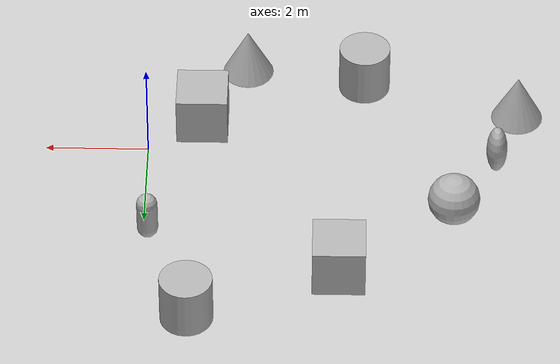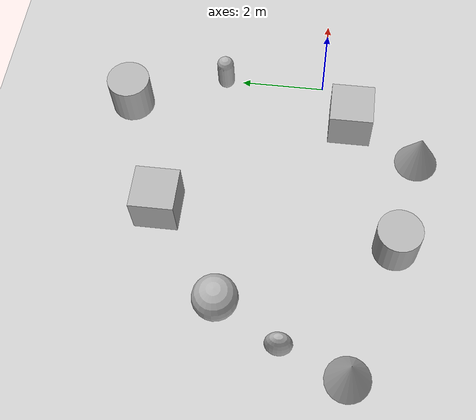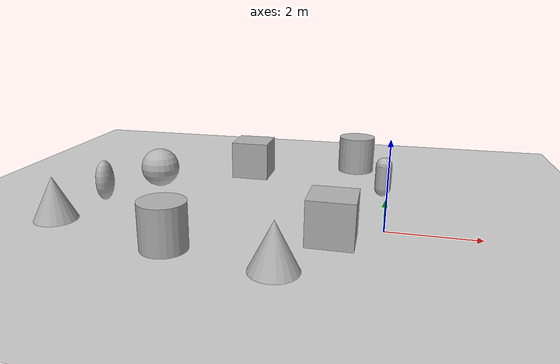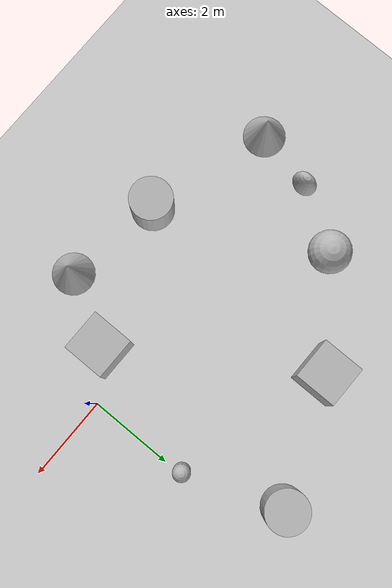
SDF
<sdf version='1.10'>
  <world name='empty'>
    <physics name='1ms' type='ignored'>
      <max_step_size>0.001</max_step_size>
      <real_time_factor>1</real_time_factor>
      <real_time_update_rate>1000</real_time_update_rate>
    </physics>
    <plugin name='gz::sim::systems::Physics' filename='gz-sim-physics-system'/>
    <plugin name='gz::sim::systems::UserCommands' filename='gz-sim-user-commands-system'/>
    <plugin name='gz::sim::systems::SceneBroadcaster' filename='gz-sim-scene-broadcaster-system'/>
    <plugin name='gz::sim::systems::Contact' filename='gz-sim-contact-system'/>
    <gravity>0 0 -9.8000000000000007</gravity>
    <magnetic_field>5.5644999999999998e-06 2.2875799999999999e-05 -4.2388400000000002e-05</magnetic_field>
    <atmosphere type='adiabatic'/>
    <scene>
      <ambient>0.400000006 0.400000006 0.400000006 1</ambient>
      <background>0.699999988 0.699999988 0.699999988 1</background>
      <shadows>true</shadows>
    </scene>
    <model name='ground_plane'>
      <static>true</static>
      <link name='link'>
        <collision name='collision'>
          <geometry>
            <plane>
              <normal>0 0 1</normal>
              <size>100 100</size>
            </plane>
          </geometry>
          <surface>
            <friction>
              <ode/>
            </friction>
            <bounce/>
            <contact/>
          </surface>
        </collision>
        <visual name='visual'>
          <geometry>
            <plane>
              <normal>0 0 1</normal>
              <size>100 100</size>
            </plane>
          </geometry>
          <material>
            <ambient>0.800000012 0.800000012 0.800000012 1</ambient>
            <diffuse>0.800000012 0.800000012 0.800000012 1</diffuse>
            <specular>0.800000012 0.800000012 0.800000012 1</specular>
          </material>
        </visual>
        <pose>0 0 0 0 0 0</pose>
        <inertial>
          <pose>0 0 0 0 0 0</pose>
          <mass>1</mass>
          <inertia>
            <ixx>1</ixx>
            <ixy>0</ixy>
            <ixz>0</ixz>
            <iyy>1</iyy>
            <iyz>0</iyz>
            <izz>1</izz>
          </inertia>
        </inertial>
        <enable_wind>false</enable_wind>
      </link>
      <pose>0 0 0 0 0 0</pose>
      <self_collide>false</self_collide>
    </model>
    <model name='box'>
      <pose>-3.744043831480754 3.4582015222886859 0.5 0 0 0</pose>
      <link name='box_link'>
        <inertial>
          <inertia>
            <ixx>0.16666</ixx>
            <ixy>0</ixy>
            <ixz>0</ixz>
            <iyy>0.16666</iyy>
            <iyz>0</iyz>
            <izz>0.16666</izz>
          </inertia>
          <mass>1</mass>
          <pose>0 0 0 0 0 0</pose>
        </inertial>
        <collision name='box_collision'>
          <geometry>
            <box>
              <size>1 1 1</size>
            </box>
          </geometry>
          <surface>
            <friction>
              <ode/>
            </friction>
            <bounce/>
            <contact/>
          </surface>
        </collision>
        <visual name='box_visual'>
          <geometry>
            <box>
              <size>1 1 1</size>
            </box>
          </geometry>
          <material>
            <ambient>0.300000012 0.300000012 0.300000012 1</ambient>
            <diffuse>0.699999988 0.699999988 0.699999988 1</diffuse>
            <specular>1 1 1 1</specular>
          </material>
        </visual>
        <pose>0 0 0 0 0 0</pose>
        <enable_wind>false</enable_wind>
      </link>
      <static>false</static>
      <self_collide>false</self_collide>
    </model>
    <model name='sphere'>
      <pose>-5.9258353839052669 1.8318219477419329 0.5 0 0 0</pose>
      <link name='sphere_link'>
        <inertial>
          <inertia>
            <ixx>0.10000000000000001</ixx>
            <ixy>0</ixy>
            <ixz>0</ixz>
            <iyy>0.10000000000000001</iyy>
            <iyz>0</iyz>
            <izz>0.10000000000000001</izz>
          </inertia>
          <mass>1</mass>
          <pose>0 0 0 0 0 0</pose>
        </inertial>
        <collision name='sphere_collision'>
          <geometry>
            <sphere>
              <radius>0.5</radius>
            </sphere>
          </geometry>
          <surface>
            <friction>
              <ode/>
            </friction>
            <bounce/>
            <contact/>
          </surface>
        </collision>
        <visual name='sphere_visual'>
          <geometry>
            <sphere>
              <radius>0.5</radius>
            </sphere>
          </geometry>
          <material>
            <ambient>0.300000012 0.300000012 0.300000012 1</ambient>
            <diffuse>0.699999988 0.699999988 0.699999988 1</diffuse>
            <specular>1 1 1 1</specular>
          </material>
        </visual>
        <pose>0 0 0 0 0 0</pose>
        <enable_wind>false</enable_wind>
      </link>
      <static>false</static>
      <self_collide>false</self_collide>
    </model>
    <model name='cone'>
      <pose>-1.8923168319320212 -2.348336193892115 0.5 0 0 0</pose>
      <link name='cone_link'>
        <inertial>
          <inertia>
            <ixx>0.074999999999999997</ixx>
            <ixy>0</ixy>
            <ixz>0</ixz>
            <iyy>0.074999999999999997</iyy>
            <iyz>0</iyz>
            <izz>0.074999999999999997</izz>
          </inertia>
          <mass>1</mass>
          <pose>0 0 0 0 0 0</pose>
        </inertial>
        <collision name='cone_collision'>
          <geometry>
            <cone>
              <radius>0.5</radius>
              <length>1</length>
            </cone>
          </geometry>
          <surface>
            <friction>
              <ode/>
            </friction>
            <bounce/>
            <contact/>
          </surface>
        </collision>
        <visual name='cone_visual'>
          <geometry>
            <cone>
              <radius>0.5</radius>
              <length>1</length>
            </cone>
          </geometry>
          <material>
            <ambient>0.300000012 0.300000012 0.300000012 1</ambient>
            <diffuse>0.699999988 0.699999988 0.699999988 1</diffuse>
            <specular>1 1 1 1</specular>
          </material>
        </visual>
        <pose>0 0 0 0 0 0</pose>
        <enable_wind>false</enable_wind>
      </link>
      <static>false</static>
      <self_collide>false</self_collide>
    </model>
    <model name='capsule'>
      <pose>-0.096292344962272125 2.3980461874132435 0.5 0 0 0</pose>
      <link name='capsule_link'>
        <inertial>
          <inertia>
            <ixx>0.074153999999999998</ixx>
            <ixy>0</ixy>
            <ixz>0</ixz>
            <iyy>0.074153999999999998</iyy>
            <iyz>0</iyz>
            <izz>0.018769000000000001</izz>
          </inertia>
          <mass>1</mass>
          <pose>0 0 0 0 0 0</pose>
        </inertial>
        <collision name='capsule_collision'>
          <geometry>
            <capsule>
              <radius>0.20000000000000001</radius>
              <length>0.59999999999999998</length>
            </capsule>
          </geometry>
          <surface>
            <friction>
              <ode/>
            </friction>
            <bounce/>
            <contact/>
          </surface>
        </collision>
        <visual name='capsule_visual'>
          <geometry>
            <capsule>
              <radius>0.20000000000000001</radius>
              <length>0.59999999999999998</length>
            </capsule>
          </geometry>
          <material>
            <ambient>0.300000012 0.300000012 0.300000012 1</ambient>
            <diffuse>0.699999988 0.699999988 0.699999988 1</diffuse>
            <specular>1 1 1 1</specular>
          </material>
        </visual>
        <pose>0 0 0 0 0 0</pose>
        <enable_wind>false</enable_wind>
      </link>
      <static>false</static>
      <self_collide>false</self_collide>
    </model>
    <model name='cylinder'>
      <pose>-4.2092866817240466 -1.9238245062835633 0.5 0 0 0</pose>
      <link name='cylinder_link'>
        <inertial>
          <inertia>
            <ixx>0.14580000000000001</ixx>
            <ixy>0</ixy>
            <ixz>0</ixz>
            <iyy>0.14580000000000001</iyy>
            <iyz>0</iyz>
            <izz>0.125</izz>
          </inertia>
          <mass>1</mass>
          <pose>0 0 0 0 0 0</pose>
        </inertial>
        <collision name='cylinder_collision'>
          <geometry>
            <cylinder>
              <radius>0.5</radius>
              <length>1</length>
            </cylinder>
          </geometry>
          <surface>
            <friction>
              <ode/>
            </friction>
            <bounce/>
            <contact/>
          </surface>
        </collision>
        <visual name='cylinder_visual'>
          <geometry>
            <cylinder>
              <radius>0.5</radius>
              <length>1</length>
            </cylinder>
          </geometry>
          <material>
            <ambient>0.300000012 0.300000012 0.300000012 1</ambient>
            <diffuse>0.699999988 0.699999988 0.699999988 1</diffuse>
            <specular>1 1 1 1</specular>
          </material>
        </visual>
        <pose>0 0 0 0 0 0</pose>
        <enable_wind>false</enable_wind>
      </link>
      <static>false</static>
      <self_collide>false</self_collide>
    </model>
    <model name='ellipsoid'>
      <pose>-6.777653600724852 0.40923342723211703 0.5 0 0 0</pose>
      <link name='ellipsoid_link'>
        <inertial>
          <inertia>
            <ixx>0.068000000000000005</ixx>
            <ixy>0</ixy>
            <ixz>0</ixz>
            <iyy>0.058000000000000003</iyy>
            <iyz>0</iyz>
            <izz>0.025999999999999999</izz>
          </inertia>
          <mass>1</mass>
          <pose>0 0 0 0 0 0</pose>
        </inertial>
        <collision name='ellipsoid_collision'>
          <geometry>
            <ellipsoid>
              <radii>0.20000000000000001 0.29999999999999999 0.5</radii>
            </ellipsoid>
          </geometry>
          <surface>
            <friction>
              <ode/>
            </friction>
            <bounce/>
            <contact/>
          </surface>
        </collision>
        <visual name='ellipsoid_visual'>
          <geometry>
            <ellipsoid>
              <radii>0.20000000000000001 0.29999999999999999 0.5</radii>
            </ellipsoid>
          </geometry>
          <material>
            <ambient>0.300000012 0.300000012 0.300000012 1</ambient>
            <diffuse>0.699999988 0.699999988 0.699999988 1</diffuse>
            <specular>1 1 1 1</specular>
          </material>
        </visual>
        <pose>0 0 0 0 0 0</pose>
        <enable_wind>false</enable_wind>
      </link>
      <static>false</static>
      <self_collide>false</self_collide>
    </model>
    <model name='box_0'>
      <pose>-1.0381464794199715 -0.72390850219854963 0.5 0 0 0</pose>
      <link name='box_link'>
        <inertial>
          <inertia>
            <ixx>0.16666</ixx>
            <ixy>0</ixy>
            <ixz>0</ixz>
            <iyy>0.16666</iyy>
            <iyz>0</iyz>
            <izz>0.16666</izz>
          </inertia>
          <mass>1</mass>
          <pose>0 0 0 0 0 0</pose>
        </inertial>
        <collision name='box_collision'>
          <geometry>
            <box>
              <size>1 1 1</size>
            </box>
          </geometry>
          <surface>
            <friction>
              <ode/>
            </friction>
            <bounce/>
            <contact/>
          </surface>
        </collision>
        <visual name='box_visual'>
          <geometry>
            <box>
              <size>1 1 1</size>
            </box>
          </geometry>
          <material>
            <ambient>0.300000012 0.300000012 0.300000012 1</ambient>
            <diffuse>0.699999988 0.699999988 0.699999988 1</diffuse>
            <specular>1 1 1 1</specular>
          </material>
        </visual>
        <pose>0 0 0 0 0 0</pose>
        <enable_wind>false</enable_wind>
      </link>
      <static>false</static>
      <self_collide>false</self_collide>
    </model>
    <model name='cylinder_0'>
      <pose>-0.91799161326121315 4.6028783893199208 0.5 0 0 0</pose>
      <link name='cylinder_link'>
        <inertial>
          <inertia>
            <ixx>0.14580000000000001</ixx>
            <ixy>0</ixy>
            <ixz>0</ixz>
            <iyy>0.14580000000000001</iyy>
            <iyz>0</iyz>
            <izz>0.125</izz>
          </inertia>
          <mass>1</mass>
          <pose>0 0 0 0 0 0</pose>
        </inertial>
        <collision name='cylinder_collision'>
          <geometry>
            <cylinder>
              <radius>0.5</radius>
              <length>1</length>
            </cylinder>
          </geometry>
          <surface>
            <friction>
              <ode/>
            </friction>
            <bounce/>
            <contact/>
          </surface>
        </collision>
        <visual name='cylinder_visual'>
          <geometry>
            <cylinder>
              <radius>0.5</radius>
              <length>1</length>
            </cylinder>
          </geometry>
          <material>
            <ambient>0.300000012 0.300000012 0.300000012 1</ambient>
            <diffuse>0.699999988 0.699999988 0.699999988 1</diffuse>
            <specular>1 1 1 1</specular>
          </material>
        </visual>
        <pose>0 0 0 0 0 0</pose>
        <enable_wind>false</enable_wind>
      </link>
      <static>false</static>
      <self_collide>false</self_collide>
    </model>
    <model name='cone_0'>
      <pose>-7.2180602194816696 -1.0657500420653536 0.5 0 0 0</pose>
      <link name='cone_link'>
        <inertial>
          <inertia>
            <ixx>0.074999999999999997</ixx>
            <ixy>0</ixy>
            <ixz>0</ixz>
            <iyy>0.074999999999999997</iyy>
            <iyz>0</iyz>
            <izz>0.074999999999999997</izz>
          </inertia>
          <mass>1</mass>
          <pose>0 0 0 0 0 0</pose>
        </inertial>
        <collision name='cone_collision'>
          <geometry>
            <cone>
              <radius>0.5</radius>
              <length>1</length>
            </cone>
          </geometry>
          <surface>
            <friction>
              <ode/>
            </friction>
            <bounce/>
            <contact/>
          </surface>
        </collision>
        <visual name='cone_visual'>
          <geometry>
            <cone>
              <radius>0.5</radius>
              <length>1</length>
            </cone>
          </geometry>
          <material>
            <ambient>0.300000012 0.300000012 0.300000012 1</ambient>
            <diffuse>0.699999988 0.699999988 0.699999988 1</diffuse>
            <specular>1 1 1 1</specular>
          </material>
        </visual>
        <pose>0 0 0 0 0 0</pose>
        <enable_wind>false</enable_wind>
      </link>
      <static>false</static>
      <self_collide>false</self_collide>
    </model>
    <light name='sun' type='directional'>
      <pose>0 0 10 0 0 0</pose>
      <cast_shadows>true</cast_shadows>
      <intensity>1</intensity>
      <direction>-0.5 0.10000000000000001 -0.90000000000000002</direction>
      <diffuse>0.800000012 0.800000012 0.800000012 1</diffuse>
      <specular>0.200000003 0.200000003 0.200000003 1</specular>
      <attenuation>
        <range>1000</range>
        <linear>0.01</linear>
        <constant>0.90000000000000002</constant>
        <quadratic>0.001</quadratic>
      </attenuation>
      <spot>
        <inner_angle>0</inner_angle>
        <outer_angle>0</outer_angle>
        <falloff>0</falloff>
      </spot>
    </light>
  </world>
</sdf>
